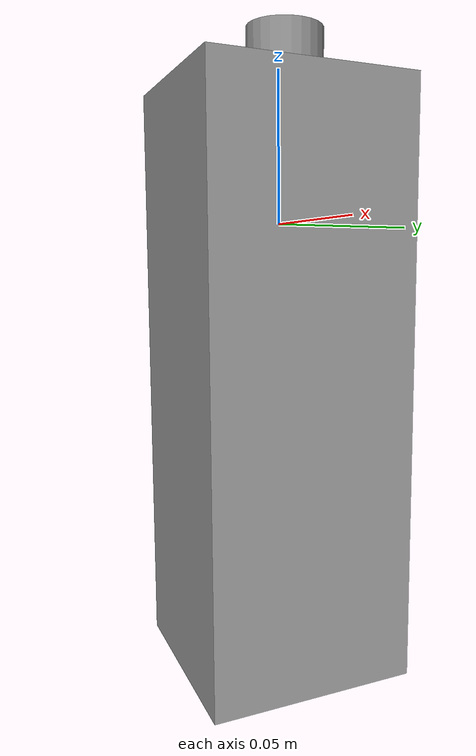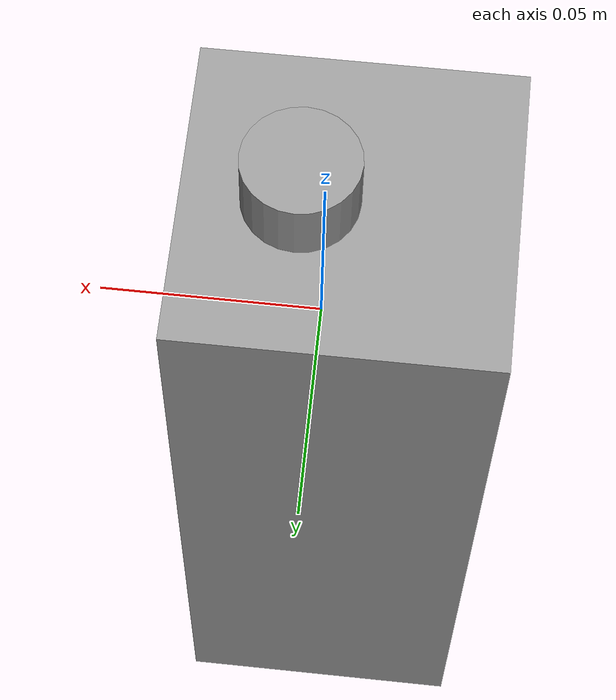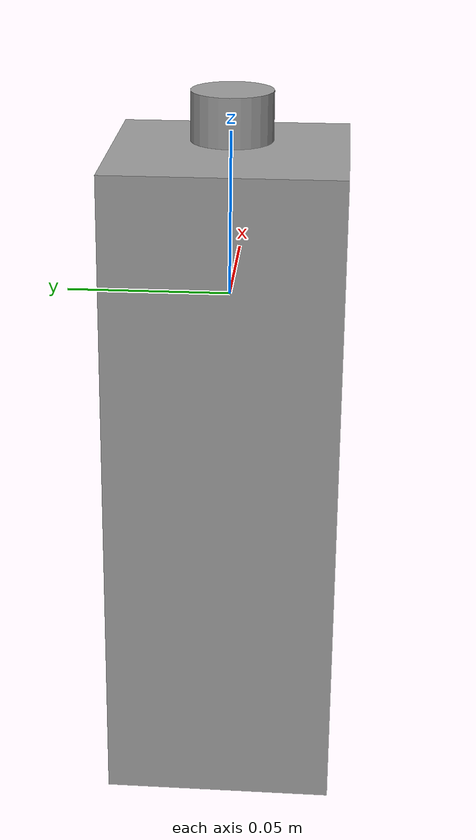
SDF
<?xml version='1.0'?>
<sdf version='1.7'>
  <model name='drink_carton'>
    <link name='link_0'>
      <inertial>
        <mass>1</mass>
        <inertia>
          <ixx>0.166667</ixx>
          <ixy>0</ixy>
          <ixz>0</ixz>
          <iyy>0.166667</iyy>
          <iyz>0</iyz>
          <izz>0.166667</izz>
        </inertia>
        <pose>0 0 0 0 -0 0</pose>
      </inertial>
      <pose>-0.005 0 -0.05375 0 -0 0</pose>
      <gravity>0</gravity>
      <self_collide>0</self_collide>
      <kinematic>0</kinematic>
      <enable_wind>0</enable_wind>
      <visual name='visual'>
        <pose>0 0 0 0 -0 0</pose>
        <geometry>
          <box>
            <size>0.07 0.07 0.2</size>
          </box>
        </geometry>
        <material>
          <lighting>1</lighting>
          <script>
            <uri>file://media/materials/scripts/gazebo.material</uri>
            <name>Gazebo/Grey</name>
          </script>
          <shader type='pixel'>
            <normal_map>__default__</normal_map>
          </shader>
          <ambient>0.3 0.3 0.3 1</ambient>
          <diffuse>0.7 0.7 0.7 1</diffuse>
          <specular>0.01 0.01 0.01 1</specular>
          <emissive>0 0 0 1</emissive>
        </material>
        <transparency>0</transparency>
        <cast_shadows>1</cast_shadows>
      </visual>
    </link>
    <link name='link_1'>
      <inertial>
        <mass>1</mass>
        <inertia>
          <ixx>0.145833</ixx>
          <ixy>0</ixy>
          <ixz>0</ixz>
          <iyy>0.145833</iyy>
          <iyz>0</iyz>
          <izz>0.125</izz>
        </inertia>
        <pose>0 0 0 0 -0 0</pose>
      </inertial>
      <pose>0.005 0 0.05375 0 -0 0</pose>
      <gravity>0</gravity>
      <self_collide>0</self_collide>
      <kinematic>0</kinematic>
      <enable_wind>0</enable_wind>
      <visual name='visual'>
        <pose>0 0 0 0 -0 0</pose>
        <geometry>
          <cylinder>
            <radius>0.0125</radius>
            <length>0.015</length>
          </cylinder>
        </geometry>
        <material>
          <lighting>1</lighting>
          <script>
            <uri>file://media/materials/scripts/gazebo.material</uri>
            <name>Gazebo/Grey</name>
          </script>
          <shader type='pixel'>
            <normal_map>__default__</normal_map>
          </shader>
          <ambient>0.3 0.3 0.3 1</ambient>
          <diffuse>0.7 0.7 0.7 1</diffuse>
          <specular>0.01 0.01 0.01 1</specular>
          <emissive>0 0 0 1</emissive>
        </material>
        <transparency>0</transparency>
        <cast_shadows>1</cast_shadows>
      </visual>
    </link>
    <joint name='link_0_JOINT_0' type='fixed'>
      <parent>link_0</parent>
      <child>link_1</child>
      <pose>0 0 0 0 -0 0</pose>
      <physics>
        <ode>
          <limit>
            <cfm>0</cfm>
            <erp>0.2</erp>
          </limit>
          <suspension>
            <cfm>0</cfm>
            <erp>0.2</erp>
          </suspension>
        </ode>
      </physics>
    </joint>
    <static>0</static>
    <allow_auto_disable>1</allow_auto_disable>
  </model>
</sdf>
